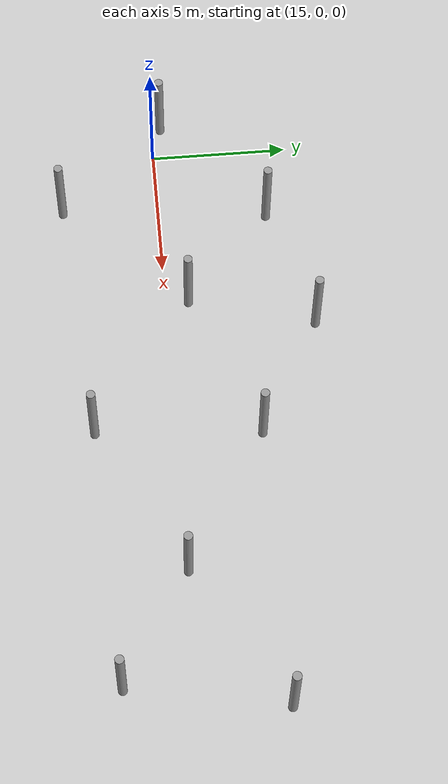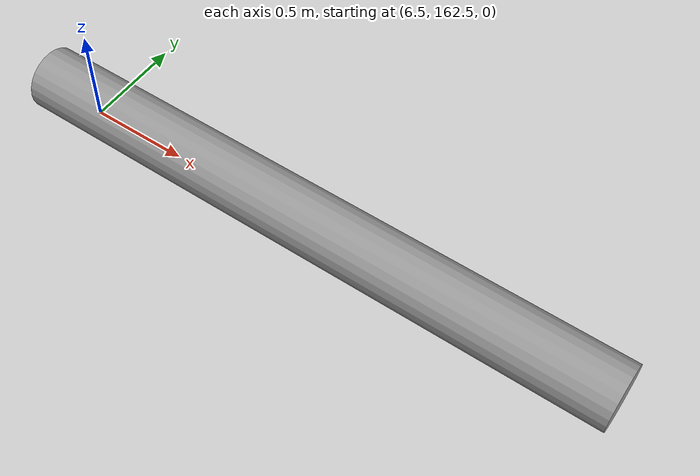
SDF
<sdf version="1.5">
 <world name="default">
  <plugin name="disable_physics" filename="libdisable_physics.so"/>
  <light name="sun" type="directional">
   <cast_shadows>0</cast_shadows>
   <pose>0 0 10 0 -0 0</pose>
   <diffuse>0.8 0.8 0.8 1</diffuse>
   <specular>0.2 0.2 0.2 1</specular>
   <attenuation>
    <range>1000</range>
    <constant>0.9</constant>
    <linear>0.01</linear>
    <quadratic>0.001</quadratic>
   </attenuation>
   <direction>-0.5 0.1 -0.9</direction>
  </light>
  <model name="ground_plane">
   <static>1</static>
   <link name="link">
    <collision name="collision">
     <geometry><plane><normal>0 0 1</normal><size>100 100</size></plane></geometry>
     <surface><friction><ode><mu>100</mu><mu2>50</mu2></ode></friction></surface>
    </collision>
    <visual name="visual">
     <cast_shadows>0</cast_shadows>
     <geometry><plane><normal>0 0 1</normal><size>100 100</size></plane></geometry>
     <material>
      <script><uri>file://media/materials/scripts/gazebo.material</uri><name>Gazebo/Grey</name></script>
     </material>
    </visual>
   </link>
  </model>
  <physics name="default_physics" default="0" type="ode">
   <max_step_size>0.001</max_step_size>
   <real_time_factor>1</real_time_factor>
   <real_time_update_rate>1000</real_time_update_rate>
   <gravity>0 0 -9.8</gravity>
   <magnetic_field>5.5645e-06 2.28758e-05 -4.23884e-05</magnetic_field>
  </physics>
  <scene><ambient>0.4 0.4 0.4 1</ambient><background>0.7 0.7 0.7 1</background><shadows>0</shadows></scene>
  <spherical_coordinates>
   <surface_model>EARTH_WGS84</surface_model>
   <latitude_deg>0</latitude_deg>
   <longitude_deg>0</longitude_deg>
   <elevation>0</elevation>
   <heading_deg>0</heading_deg>
  </spherical_coordinates>
  <model name="unit_cylinder_1_clone_0">
   <pose>26.5792 -2.86104 1.51824 3.14159 -0 -0.13359</pose>
   <link name="link">
    <inertial>
     <mass>1</mass>
     <inertia><ixx>0.145833</ixx><ixy>0</ixy><ixz>0</ixz><iyy>0.145833</iyy><iyz>0</iyz><izz>0.125</izz></inertia>
    </inertial>
    <collision name="collision">
     <geometry><cylinder><radius>0.155447</radius><length>3.03649</length></cylinder></geometry>
    </collision>
    <visual name="visual">
     <geometry><cylinder><radius>0.155447</radius><length>3.03649</length></cylinder></geometry>
     <material>
      <script><name>Gazebo/Grey</name><uri>file://media/materials/scripts/gazebo.material</uri></script>
     </material>
    </visual>
   </link>
  </model>
  <model name="unit_cylinder_1_clone_1">
   <pose>13.7504 0.356767 1.51824 0 -0 3.10253</pose>
   <link name="link">
    <inertial>
     <mass>1</mass>
     <inertia><ixx>0.145833</ixx><ixy>0</ixy><ixz>0</ixz><iyy>0.145833</iyy><iyz>0</iyz><izz>0.125</izz></inertia>
    </inertial>
    <collision name="collision">
     <geometry><cylinder><radius>0.155447</radius><length>3.03649</length></cylinder></geometry>
    </collision>
    <visual name="visual">
     <geometry><cylinder><radius>0.155447</radius><length>3.03649</length></cylinder></geometry>
     <material>
      <script><name>Gazebo/Grey</name><uri>file://media/materials/scripts/gazebo.material</uri></script>
     </material>
    </visual>
   </link>
  </model>
  <model name="unit_cylinder_1_clone_2">
   <pose>7.78802 162.452 0.15499 1.5711 -0.058223 -1.57081</pose>
   <link name="link">
    <inertial>
     <mass>1</mass>
     <inertia><ixx>0.145833</ixx><ixy>0</ixy><ixz>0</ixz><iyy>0.145833</iyy><iyz>0</iyz><izz>0.125</izz></inertia>
    </inertial>
    <collision name="collision">
     <geometry><cylinder><radius>0.155447</radius><length>3.03649</length></cylinder></geometry>
    </collision>
    <visual name="visual">
     <geometry><cylinder><radius>0.155447</radius><length>3.03649</length></cylinder></geometry>
     <material>
      <script><name>Gazebo/Grey</name><uri>file://media/materials/scripts/gazebo.material</uri></script>
     </material>
    </visual>
   </link>
  </model>
  <model name="unit_cylinder_1_clone_4">
   <pose>22.7424 5.33545 1.51824 0 0 -0.038717</pose>
   <link name="link">
    <inertial>
     <mass>1</mass>
     <inertia><ixx>0.145833</ixx><ixy>0</ixy><ixz>0</ixz><iyy>0.145833</iyy><iyz>0</iyz><izz>0.125</izz></inertia>
    </inertial>
    <collision name="collision">
     <geometry><cylinder><radius>0.155447</radius><length>3.03649</length></cylinder></geometry>
    </collision>
    <visual name="visual">
     <geometry><cylinder><radius>0.155447</radius><length>3.03649</length></cylinder></geometry>
     <material>
      <script><name>Gazebo/Grey</name><uri>file://media/materials/scripts/gazebo.material</uri></script>
     </material>
    </visual>
   </link>
  </model>
  <model name="unit_cylinder_1_clone_5">
   <pose>27.0022 3.00529 1.51824 0 0 -0.043747</pose>
   <link name="link">
    <inertial>
     <mass>1</mass>
     <inertia><ixx>0.145833</ixx><ixy>0</ixy><ixz>0</ixz><iyy>0.145833</iyy><iyz>0</iyz><izz>0.125</izz></inertia>
    </inertial>
    <collision name="collision">
     <geometry><cylinder><radius>0.155447</radius><length>3.03649</length></cylinder></geometry>
    </collision>
    <visual name="visual">
     <geometry><cylinder><radius>0.155447</radius><length>3.03649</length></cylinder></geometry>
     <material>
      <script><name>Gazebo/Grey</name><uri>file://media/materials/scripts/gazebo.material</uri></script>
     </material>
    </visual>
   </link>
  </model>
  <model name="unit_cylinder_1_clone_1_clone">
   <pose>17.2933 -3.53177 1.51824 0 -0 3.10534</pose>
   <link name="link">
    <inertial>
     <mass>1</mass>
     <inertia><ixx>0.145833</ixx><ixy>0</ixy><ixz>0</ixz><iyy>0.145833</iyy><iyz>0</iyz><izz>0.125</izz></inertia>
    </inertial>
    <collision name="collision">
     <geometry><cylinder><radius>0.155447</radius><length>3.03649</length></cylinder></geometry>
    </collision>
    <visual name="visual">
     <geometry><cylinder><radius>0.155447</radius><length>3.03649</length></cylinder></geometry>
     <material>
      <script><name>Gazebo/Grey</name><uri>file://media/materials/scripts/gazebo.material</uri></script>
     </material>
    </visual>
   </link>
  </model>
  <model name="unit_cylinder_1_clone_1_clone_0">
   <pose>18.0002 4.00019 1.51824 0 -0 3.10538</pose>
   <link name="link">
    <inertial>
     <mass>1</mass>
     <inertia><ixx>0.145833</ixx><ixy>0</ixy><ixz>0</ixz><iyy>0.145833</iyy><iyz>0</iyz><izz>0.125</izz></inertia>
    </inertial>
    <collision name="collision">
     <geometry><cylinder><radius>0.155447</radius><length>3.03649</length></cylinder></geometry>
    </collision>
    <visual name="visual">
     <geometry><cylinder><radius>0.155447</radius><length>3.03649</length></cylinder></geometry>
     <material>
      <script><name>Gazebo/Grey</name><uri>file://media/materials/scripts/gazebo.material</uri></script>
     </material>
    </visual>
   </link>
  </model>
  <model name="unit_cylinder_1_clone_1_clone_1">
   <pose>21.5009 0.830325 1.51824 0 -0 3.10307</pose>
   <link name="link">
    <inertial>
     <mass>1</mass>
     <inertia><ixx>0.145833</ixx><ixy>0</ixy><ixz>0</ixz><iyy>0.145833</iyy><iyz>0</iyz><izz>0.125</izz></inertia>
    </inertial>
    <collision name="collision">
     <geometry><cylinder><radius>0.155447</radius><length>3.03649</length></cylinder></geometry>
    </collision>
    <visual name="visual">
     <geometry><cylinder><radius>0.155447</radius><length>3.03649</length></cylinder></geometry>
     <material>
      <script><name>Gazebo/Grey</name><uri>file://media/materials/scripts/gazebo.material</uri></script>
     </material>
    </visual>
   </link>
  </model>
  <model name="unit_cylinder_1_clone_1_clone_2">
   <pose>32.0001 8.3e-05 1.51824 0 -0 3.10345</pose>
   <link name="link">
    <inertial>
     <mass>1</mass>
     <inertia><ixx>0.145833</ixx><ixy>0</ixy><ixz>0</ixz><iyy>0.145833</iyy><iyz>0</iyz><izz>0.125</izz></inertia>
    </inertial>
    <collision name="collision">
     <geometry><cylinder><radius>0.155447</radius><length>3.03649</length></cylinder></geometry>
    </collision>
    <visual name="visual">
     <geometry><cylinder><radius>0.155447</radius><length>3.03649</length></cylinder></geometry>
     <material>
      <script><name>Gazebo/Grey</name><uri>file://media/materials/scripts/gazebo.material</uri></script>
     </material>
    </visual>
   </link>
  </model>
  <model name="unit_cylinder_1_clone_1_clone_3">
   <pose>36.0001 -2.47732 1.51824 0 -0 3.10389</pose>
   <link name="link">
    <inertial>
     <mass>1</mass>
     <inertia><ixx>0.145833</ixx><ixy>0</ixy><ixz>0</ixz><iyy>0.145833</iyy><iyz>0</iyz><izz>0.125</izz></inertia>
    </inertial>
    <collision name="collision">
     <geometry><cylinder><radius>0.155447</radius><length>3.03649</length></cylinder></geometry>
    </collision>
    <visual name="visual">
     <geometry><cylinder><radius>0.155447</radius><length>3.03649</length></cylinder></geometry>
     <material>
      <script><name>Gazebo/Grey</name><uri>file://media/materials/scripts/gazebo.material</uri></script>
     </material>
    </visual>
   </link>
  </model>
  <model name="unit_cylinder_1_clone_1_clone_4">
   <pose>37.0001 3.00006 1.51824 0 -0 3.10331</pose>
   <link name="link">
    <inertial>
     <mass>1</mass>
     <inertia><ixx>0.145833</ixx><ixy>0</ixy><ixz>0</ixz><iyy>0.145833</iyy><iyz>0</iyz><izz>0.125</izz></inertia>
    </inertial>
    <collision name="collision">
     <geometry><cylinder><radius>0.155447</radius><length>3.03649</length></cylinder></geometry>
    </collision>
    <visual name="visual">
     <geometry><cylinder><radius>0.155447</radius><length>3.03649</length></cylinder></geometry>
     <material>
      <script><name>Gazebo/Grey</name><uri>file://media/materials/scripts/gazebo.material</uri></script>
     </material>
    </visual>
   </link>
  </model>
 </world>
</sdf>
